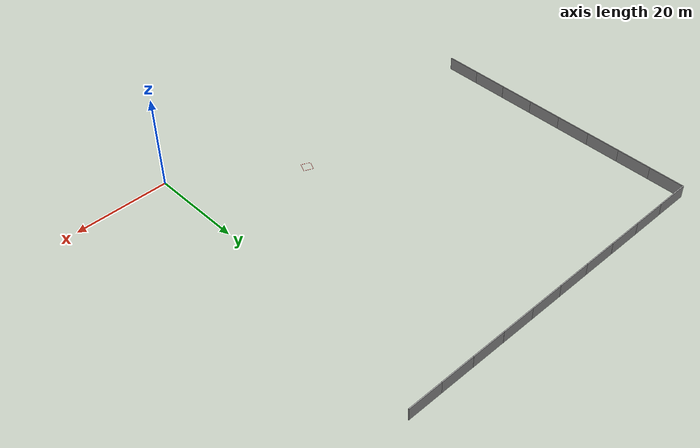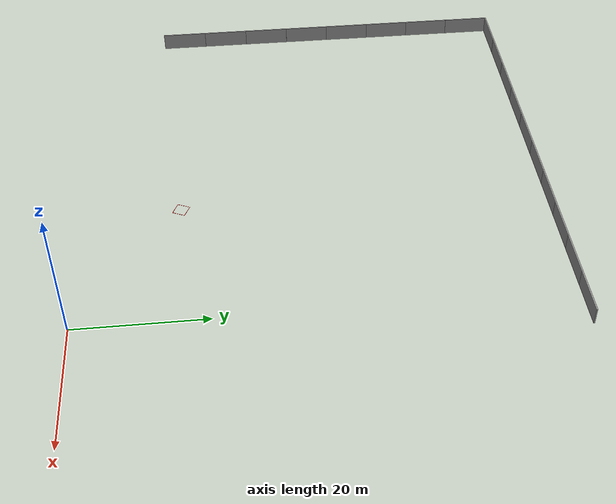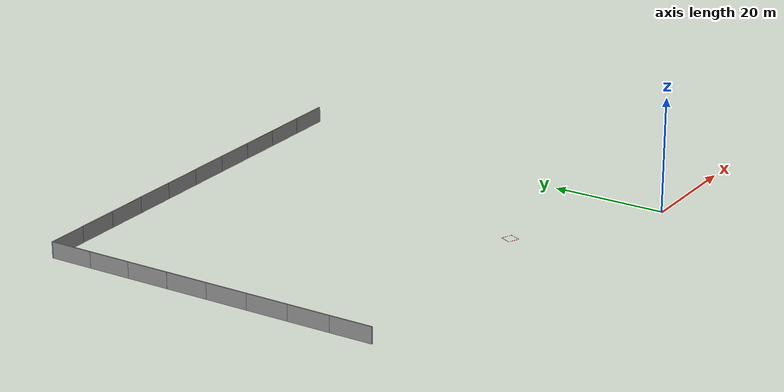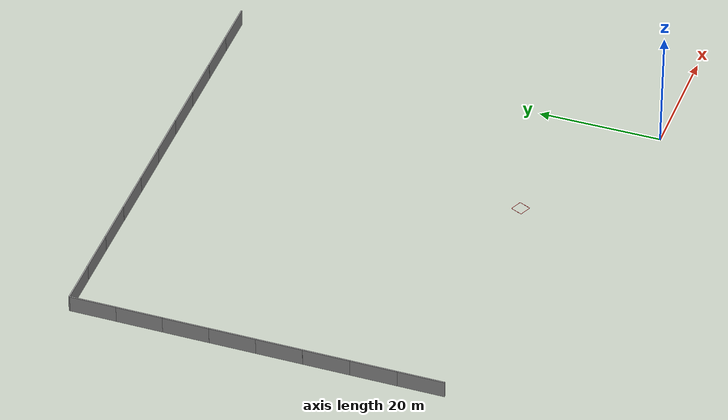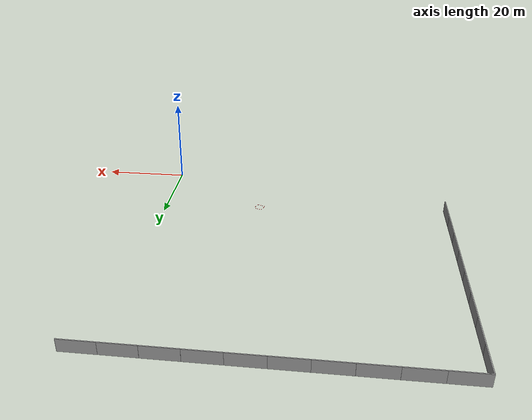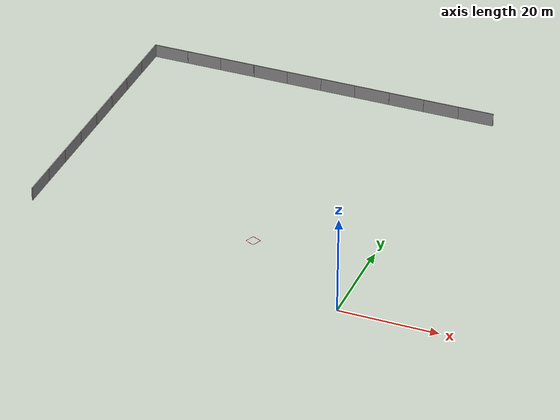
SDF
<sdf version="1.7">
 <world name="default">
  <model name="grey_wall_clone_10_clone_clone_10">
   <static>1</static>
   <link name="link">
    <pose>0 0 1.4 0 -0 0</pose>
    <collision name="collision"><geometry><box><size>7.5 0.2 2.8</size></box></geometry></collision>
    <visual name="visual">
     <cast_shadows>0</cast_shadows>
     <geometry><box><size>7.5 0.2 2.8</size></box></geometry>
     <material>
      <script>
       <uri>model://forest/grey_wall/materials/scripts</uri>
       <uri>model://forest/grey_wall/materials/textures</uri>
       <name>vrc/grey_wall</name>
      </script>
     </material>
    </visual>
   </link>
   <pose>2.37975 72.635 0 0 -0 0</pose>
  </model>
  <model name="grey_wall_clone_10_clone_clone_11">
   <static>1</static>
   <link name="link">
    <pose>0 0 1.4 0 -0 0</pose>
    <collision name="collision"><geometry><box><size>7.5 0.2 2.8</size></box></geometry></collision>
    <visual name="visual">
     <cast_shadows>0</cast_shadows>
     <geometry><box><size>7.5 0.2 2.8</size></box></geometry>
     <material>
      <script>
       <uri>model://forest/grey_wall/materials/scripts</uri>
       <uri>model://forest/grey_wall/materials/textures</uri>
       <name>vrc/grey_wall</name>
      </script>
     </material>
    </visual>
   </link>
   <pose>-5.09788 72.6331 0 0 -0 0</pose>
  </model>
  <model name="grey_wall_clone_10_clone_clone_12">
   <static>1</static>
   <link name="link">
    <pose>0 0 1.4 0 -0 0</pose>
    <collision name="collision"><geometry><box><size>7.5 0.2 2.8</size></box></geometry></collision>
    <visual name="visual">
     <cast_shadows>0</cast_shadows>
     <geometry><box><size>7.5 0.2 2.8</size></box></geometry>
     <material>
      <script>
       <uri>model://forest/grey_wall/materials/scripts</uri>
       <uri>model://forest/grey_wall/materials/textures</uri>
       <name>vrc/grey_wall</name>
      </script>
     </material>
    </visual>
   </link>
   <pose>-12.6061 72.6425 0 0 -0 0</pose>
  </model>
  <model name="grey_wall_clone_10_clone_clone_13">
   <static>1</static>
   <link name="link">
    <pose>0 0 1.4 0 -0 0</pose>
    <collision name="collision"><geometry><box><size>7.5 0.2 2.8</size></box></geometry></collision>
    <visual name="visual">
     <cast_shadows>0</cast_shadows>
     <geometry><box><size>7.5 0.2 2.8</size></box></geometry>
     <material>
      <script>
       <uri>model://forest/grey_wall/materials/scripts</uri>
       <uri>model://forest/grey_wall/materials/textures</uri>
       <name>vrc/grey_wall</name>
      </script>
     </material>
    </visual>
   </link>
   <pose>-20.1193 72.6527 0 0 -0 0</pose>
  </model>
  <model name="grey_wall_clone_10_clone_clone_14">
   <static>1</static>
   <link name="link">
    <pose>0 0 1.4 0 -0 0</pose>
    <collision name="collision"><geometry><box><size>7.5 0.2 2.8</size></box></geometry></collision>
    <visual name="visual">
     <cast_shadows>0</cast_shadows>
     <geometry><box><size>7.5 0.2 2.8</size></box></geometry>
     <material>
      <script>
       <uri>model://forest/grey_wall/materials/scripts</uri>
       <uri>model://forest/grey_wall/materials/textures</uri>
       <name>vrc/grey_wall</name>
      </script>
     </material>
    </visual>
   </link>
   <pose>-27.6199 72.6558 0 0 -0 0</pose>
  </model>
  <model name="grey_wall_clone_10_clone_clone_15">
   <static>1</static>
   <link name="link">
    <pose>0 0 1.4 0 -0 0</pose>
    <collision name="collision"><geometry><box><size>7.5 0.2 2.8</size></box></geometry></collision>
    <visual name="visual">
     <cast_shadows>0</cast_shadows>
     <geometry><box><size>7.5 0.2 2.8</size></box></geometry>
     <material>
      <script>
       <uri>model://forest/grey_wall/materials/scripts</uri>
       <uri>model://forest/grey_wall/materials/textures</uri>
       <name>vrc/grey_wall</name>
      </script>
     </material>
    </visual>
   </link>
   <pose>-35.1125 72.6503 0 0 -0 0</pose>
  </model>
  <model name="grey_wall_clone_10_clone_clone_16">
   <static>1</static>
   <link name="link">
    <pose>0 0 1.4 0 -0 0</pose>
    <collision name="collision"><geometry><box><size>7.5 0.2 2.8</size></box></geometry></collision>
    <visual name="visual">
     <cast_shadows>0</cast_shadows>
     <geometry><box><size>7.5 0.2 2.8</size></box></geometry>
     <material>
      <script>
       <uri>model://forest/grey_wall/materials/scripts</uri>
       <uri>model://forest/grey_wall/materials/textures</uri>
       <name>vrc/grey_wall</name>
      </script>
     </material>
    </visual>
   </link>
   <pose>-42.606 72.6465 0 0 -0 0</pose>
  </model>
  <model name="grey_wall_clone_10_clone_clone_17">
   <static>1</static>
   <link name="link">
    <pose>0 0 1.4 0 -0 0</pose>
    <collision name="collision"><geometry><box><size>7.5 0.2 2.8</size></box></geometry></collision>
    <visual name="visual">
     <cast_shadows>0</cast_shadows>
     <geometry><box><size>7.5 0.2 2.8</size></box></geometry>
     <material>
      <script>
       <uri>model://forest/grey_wall/materials/scripts</uri>
       <uri>model://forest/grey_wall/materials/textures</uri>
       <name>vrc/grey_wall</name>
      </script>
     </material>
    </visual>
   </link>
   <pose>-50.1127 72.6522 0 0 -0 0</pose>
  </model>
  <model name="grey_wall_clone_10_clone_clone_18">
   <static>1</static>
   <link name="link">
    <pose>0 0 1.4 0 -0 0</pose>
    <collision name="collision"><geometry><box><size>7.5 0.2 2.8</size></box></geometry></collision>
    <visual name="visual">
     <cast_shadows>0</cast_shadows>
     <geometry><box><size>7.5 0.2 2.8</size></box></geometry>
     <material>
      <script>
       <uri>model://forest/grey_wall/materials/scripts</uri>
       <uri>model://forest/grey_wall/materials/textures</uri>
       <name>vrc/grey_wall</name>
      </script>
     </material>
    </visual>
   </link>
   <pose>-57.6217 72.6499 0 0 -0 0</pose>
  </model>
  <model name="grey_wall_clone_10_clone_clone_19">
   <static>1</static>
   <link name="link">
    <pose>0 0 1.4 0 -0 0</pose>
    <collision name="collision"><geometry><box><size>7.5 0.2 2.8</size></box></geometry></collision>
    <visual name="visual">
     <cast_shadows>0</cast_shadows>
     <geometry><box><size>7.5 0.2 2.8</size></box></geometry>
     <material>
      <script>
       <uri>model://forest/grey_wall/materials/scripts</uri>
       <uri>model://forest/grey_wall/materials/textures</uri>
       <name>vrc/grey_wall</name>
      </script>
     </material>
    </visual>
   </link>
   <pose>-65.1107 72.6364 0 0 -0 0</pose>
  </model>
  <model name="grey_wall_clone_10_clone_0_clone_5_clone_12_clone">
   <static>1</static>
   <link name="link">
    <pose>0 0 1.4 0 -0 0</pose>
    <collision name="collision"><geometry><box><size>7.5 0.2 2.8</size></box></geometry></collision>
    <visual name="visual">
     <cast_shadows>0</cast_shadows>
     <geometry><box><size>7.5 0.2 2.8</size></box></geometry>
     <material>
      <script>
       <uri>model://forest/grey_wall/materials/scripts</uri>
       <uri>model://forest/grey_wall/materials/textures</uri>
       <name>vrc/grey_wall</name>
      </script>
     </material>
    </visual>
   </link>
   <pose>-68.7572 68.7982 0 0 0 -1.56932</pose>
  </model>
  <model name="grey_wall_clone_10_clone_0_clone_5_clone_12_clone_0">
   <static>1</static>
   <link name="link">
    <pose>0 0 1.4 0 -0 0</pose>
    <collision name="collision"><geometry><box><size>7.5 0.2 2.8</size></box></geometry></collision>
    <visual name="visual">
     <cast_shadows>0</cast_shadows>
     <geometry><box><size>7.5 0.2 2.8</size></box></geometry>
     <material>
      <script>
       <uri>model://forest/grey_wall/materials/scripts</uri>
       <uri>model://forest/grey_wall/materials/textures</uri>
       <name>vrc/grey_wall</name>
      </script>
     </material>
    </visual>
   </link>
   <pose>-68.7575 61.2964 0 0 0 -1.56932</pose>
  </model>
  <model name="grey_wall_clone_10_clone_0_clone_5_clone_12_clone_1">
   <static>1</static>
   <link name="link">
    <pose>0 0 1.4 0 -0 0</pose>
    <collision name="collision"><geometry><box><size>7.5 0.2 2.8</size></box></geometry></collision>
    <visual name="visual">
     <cast_shadows>0</cast_shadows>
     <geometry><box><size>7.5 0.2 2.8</size></box></geometry>
     <material>
      <script>
       <uri>model://forest/grey_wall/materials/scripts</uri>
       <uri>model://forest/grey_wall/materials/textures</uri>
       <name>vrc/grey_wall</name>
      </script>
     </material>
    </visual>
   </link>
   <pose>-68.7526 53.7973 0 0 0 -1.56932</pose>
  </model>
  <model name="grey_wall_clone_10_clone_0_clone_5_clone_12_clone_2">
   <static>1</static>
   <link name="link">
    <pose>0 0 1.4 0 -0 0</pose>
    <collision name="collision"><geometry><box><size>7.5 0.2 2.8</size></box></geometry></collision>
    <visual name="visual">
     <cast_shadows>0</cast_shadows>
     <geometry><box><size>7.5 0.2 2.8</size></box></geometry>
     <material>
      <script>
       <uri>model://forest/grey_wall/materials/scripts</uri>
       <uri>model://forest/grey_wall/materials/textures</uri>
       <name>vrc/grey_wall</name>
      </script>
     </material>
    </visual>
   </link>
   <pose>-68.7342 46.3034 0 0 0 -1.56932</pose>
  </model>
  <model name="grey_wall_clone_10_clone_0_clone_5_clone_12_clone_3">
   <static>1</static>
   <link name="link">
    <pose>0 0 1.4 0 -0 0</pose>
    <collision name="collision"><geometry><box><size>7.5 0.2 2.8</size></box></geometry></collision>
    <visual name="visual">
     <cast_shadows>0</cast_shadows>
     <geometry><box><size>7.5 0.2 2.8</size></box></geometry>
     <material>
      <script>
       <uri>model://forest/grey_wall/materials/scripts</uri>
       <uri>model://forest/grey_wall/materials/textures</uri>
       <name>vrc/grey_wall</name>
      </script>
     </material>
    </visual>
   </link>
   <pose>-68.7287 38.8101 0 0 0 -1.56932</pose>
  </model>
  <model name="grey_wall_clone_10_clone_0_clone_5_clone_12_clone_4">
   <static>1</static>
   <link name="link">
    <pose>0 0 1.4 0 -0 0</pose>
    <collision name="collision"><geometry><box><size>7.5 0.2 2.8</size></box></geometry></collision>
    <visual name="visual">
     <cast_shadows>0</cast_shadows>
     <geometry><box><size>7.5 0.2 2.8</size></box></geometry>
     <material>
      <script>
       <uri>model://forest/grey_wall/materials/scripts</uri>
       <uri>model://forest/grey_wall/materials/textures</uri>
       <name>vrc/grey_wall</name>
      </script>
     </material>
    </visual>
   </link>
   <pose>-68.7201 31.3023 0 0 0 -1.56932</pose>
  </model>
  <model name="grey_wall_clone_10_clone_0_clone_5_clone_12_clone_5">
   <static>1</static>
   <link name="link">
    <pose>0 0 1.4 0 -0 0</pose>
    <collision name="collision"><geometry><box><size>7.5 0.2 2.8</size></box></geometry></collision>
    <visual name="visual">
     <cast_shadows>0</cast_shadows>
     <geometry><box><size>7.5 0.2 2.8</size></box></geometry>
     <material>
      <script>
       <uri>model://forest/grey_wall/materials/scripts</uri>
       <uri>model://forest/grey_wall/materials/textures</uri>
       <name>vrc/grey_wall</name>
      </script>
     </material>
    </visual>
   </link>
   <pose>-68.7145 23.7907 0 0 0 -1.56932</pose>
  </model>
  <model name="grey_wall_clone_10_clone_0_clone_5_clone_12_clone_6">
   <static>1</static>
   <link name="link">
    <pose>0 0 1.4 0 -0 0</pose>
    <collision name="collision"><geometry><box><size>7.5 0.2 2.8</size></box></geometry></collision>
    <visual name="visual">
     <cast_shadows>0</cast_shadows>
     <geometry><box><size>7.5 0.2 2.8</size></box></geometry>
     <material>
      <script>
       <uri>model://forest/grey_wall/materials/scripts</uri>
       <uri>model://forest/grey_wall/materials/textures</uri>
       <name>vrc/grey_wall</name>
      </script>
     </material>
    </visual>
   </link>
   <pose>-68.6998 16.2892 0 0 0 -1.56932</pose>
  </model>
  <model name="red_square_box">
   <static>0</static>
   <link name="link">
    <inertial>
     <mass>5</mass>
     <inertia><ixx>0.083</ixx><iyy>0.083</iyy><izz>0.083</izz><ixy>0</ixy><ixz>0</ixz><iyz>0</iyz></inertia>
    </inertial>
    <visual name="left_line">
     <pose>-1 0 0.2 0 -0 0</pose>
     <geometry><box><size>0.05 2 0.01</size></box></geometry>
     <material><ambient>1 0 0 1</ambient><diffuse>1 0 0 1</diffuse></material>
    </visual>
    <collision name="left_line_collision">
     <pose>-1 0 0.2 0 -0 0</pose>
     <geometry><box><size>0.05 2 0.01</size></box></geometry>
    </collision>
    <visual name="right_line">
     <pose>1 0 0.2 0 -0 0</pose>
     <geometry><box><size>0.05 2 0.01</size></box></geometry>
     <material><ambient>1 0 0 1</ambient><diffuse>1 0 0 1</diffuse></material>
    </visual>
    <collision name="right_line_collision">
     <pose>1 0 0.2 0 -0 0</pose>
     <geometry><box><size>0.05 2 0.01</size></box></geometry>
    </collision>
    <visual name="top_line">
     <pose>0 1 0.2 0 -0 0</pose>
     <geometry><box><size>2 0.05 0.01</size></box></geometry>
     <material><ambient>1 0 0 1</ambient><diffuse>1 0 0 1</diffuse></material>
    </visual>
    <collision name="top_line_collision">
     <pose>0 1 0.2 0 -0 0</pose>
     <geometry><box><size>2 0.05 0.01</size></box></geometry>
    </collision>
    <visual name="bottom_line">
     <pose>0 -1 0.2 0 -0 0</pose>
     <geometry><box><size>2 0.05 0.01</size></box></geometry>
     <material><ambient>1 0 0 1</ambient><diffuse>1 0 0 1</diffuse></material>
    </visual>
    <collision name="bottom_line_collision">
     <pose>0 -1 0.2 0 -0 0</pose>
     <geometry><box><size>2 0.05 0.01</size></box></geometry>
    </collision>
   </link>
   <pose>-23.2364 15.5624 -0.195001 1e-06 -6e-06 -0.42007</pose>
  </model>
 </world>
</sdf>
